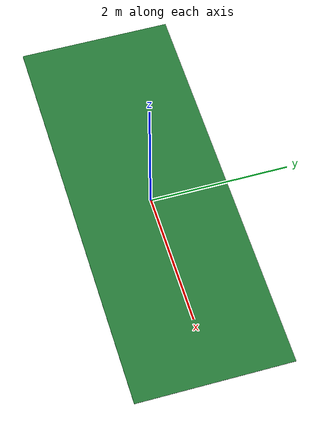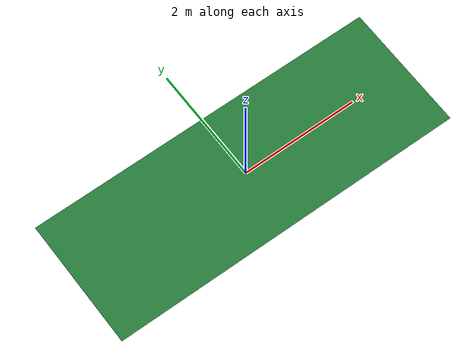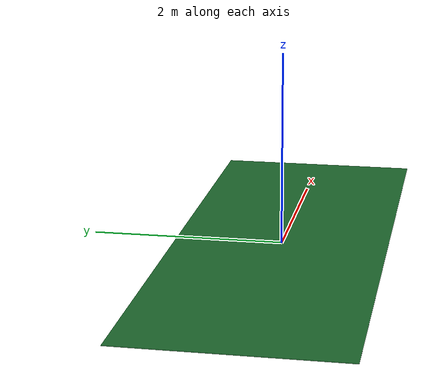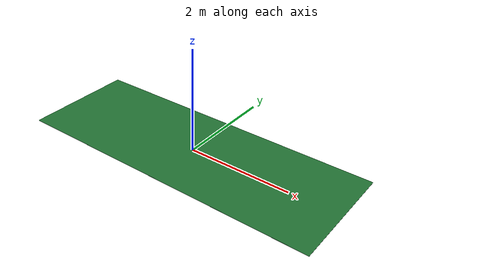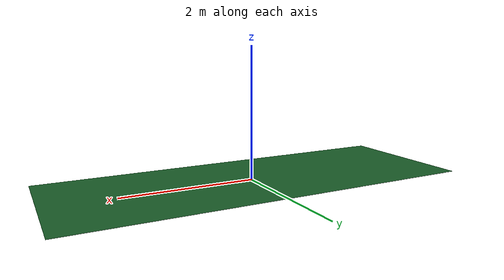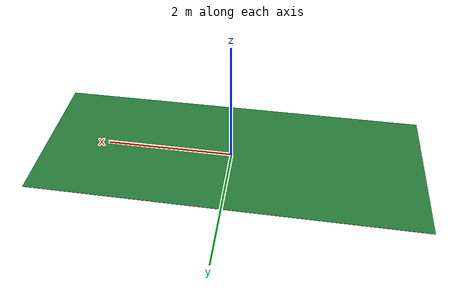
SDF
<?xml version="1.0"?>
<sdf version="1.9">
  <model name="sauvc_target_mat">
    <static>true</static>
    <plugin filename="gz-sim-label-system" name="gz::sim::systems::Label">
      <label>11</label>
    </plugin>
    <link name="mat">
      <pose>0 0 0.02 0 0 0</pose>
      <inertial>
        <pose>0 0 0 0 0 0</pose>
        <mass>0.001</mass>
        <inertia>
          <ixx>1e-06</ixx><ixy>0</ixy><ixz>0</ixz>
          <iyy>1e-06</iyy><iyz>0</iyz>
          <izz>1e-06</izz>
        </inertia>
      </inertial>
      <visual name="mat_visual">
        <pose>0 0 0 0 0 0</pose>
        <geometry><box><size>6 2.2 0.006</size></box></geometry>
        <material>
          <ambient>0.13 0.45 0.2 1</ambient>
          <diffuse>0.13 0.45 0.2 1</diffuse>
          <specular>0.06 0.06 0.06 1</specular>
          <emissive>0.14 0.14 0.14 1</emissive>
          <pbr>
            <metal>
              <albedo_map>model://sauvc_textures/albedo_fabric.png</albedo_map>
              <metalness>0.0</metalness>
              <roughness_map>model://sauvc_textures/rough_fabric.png</roughness_map>
              <normal_map>model://sauvc_textures/norm_fabric.png</normal_map>
            </metal>
          </pbr>
        </material>
      </visual>
    </link>
  </model>
</sdf>
